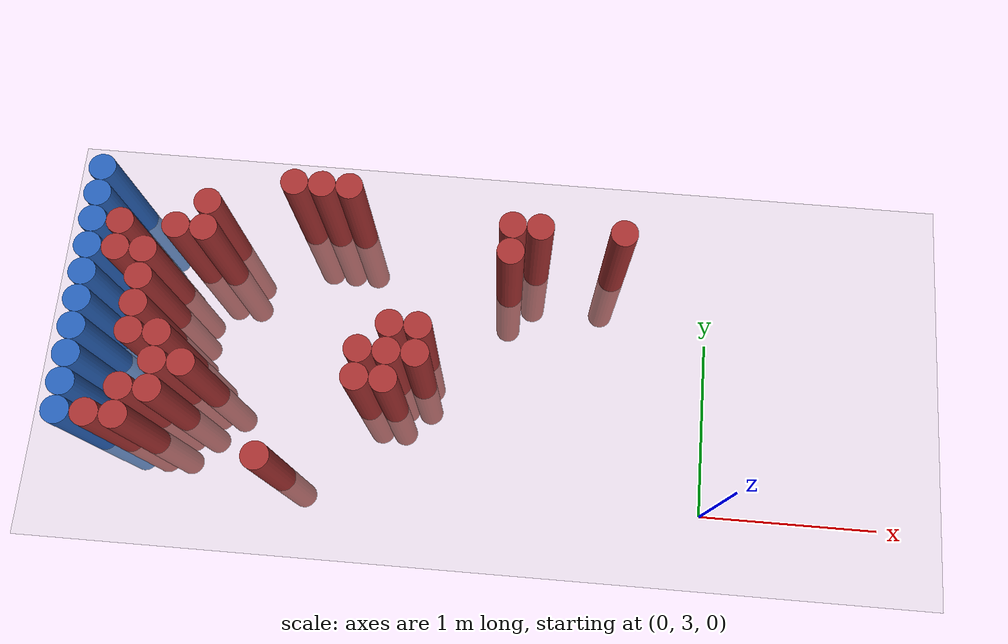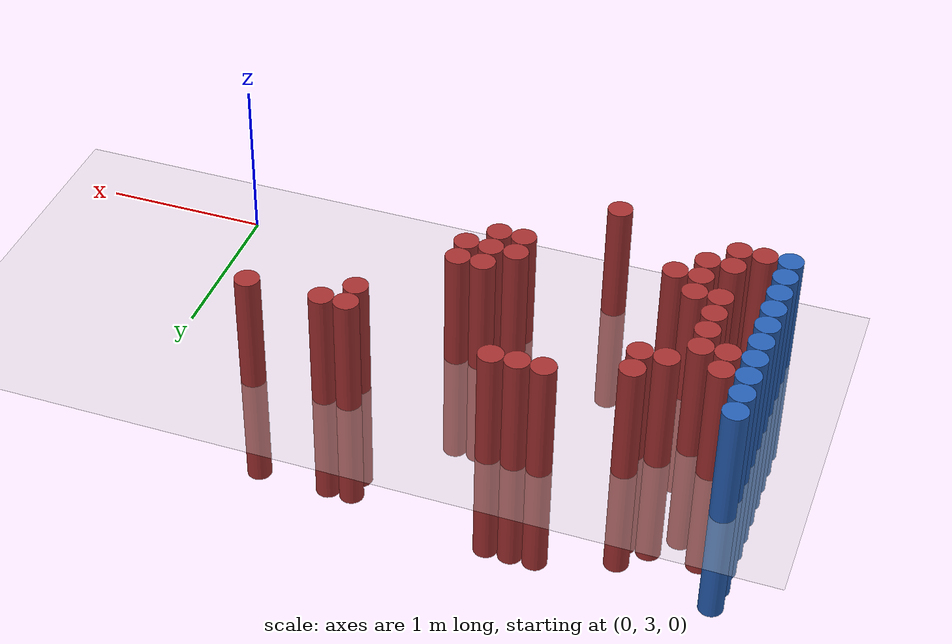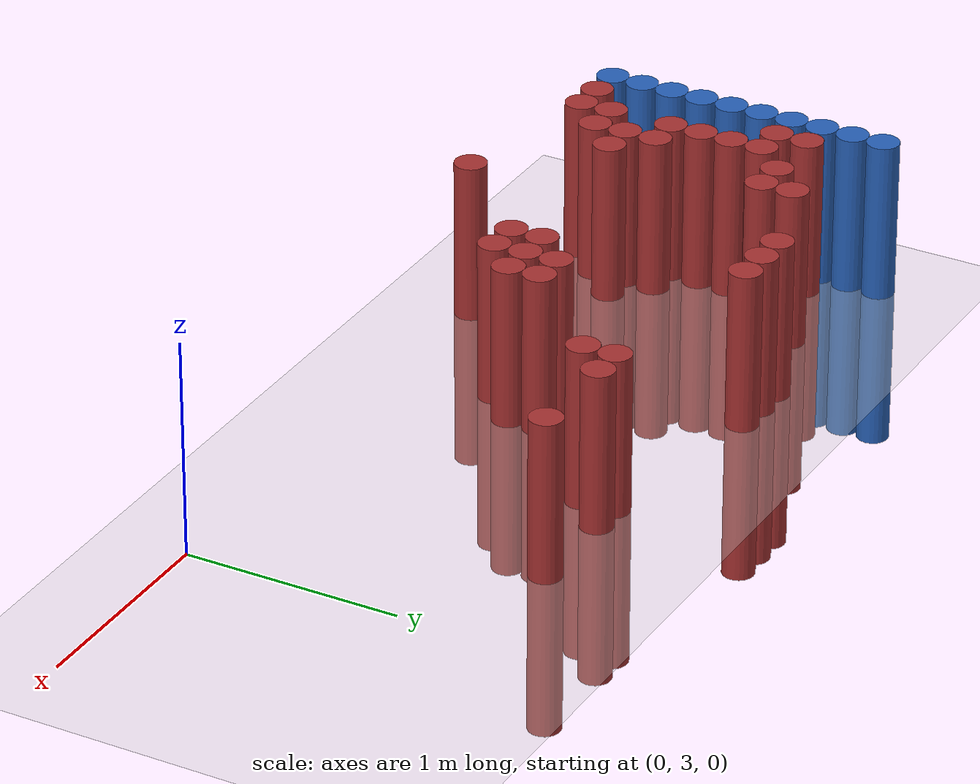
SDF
<sdf version="1.6">
 <world name="default">
  <model name="ground_plane">
   <static>1</static>
   <link name="link">
    <collision name="collision">
     <geometry><plane><normal>0 0 1</normal><size>100 100</size></plane></geometry>
     <surface><friction><ode><mu>100</mu><mu2>50</mu2></ode></friction></surface>
    </collision>
    <visual name="visual">
     <cast_shadows>0</cast_shadows>
     <geometry><plane><normal>0 0 1</normal><size>100 100</size></plane></geometry>
     <material>
      <script><uri>file://media/materials/scripts/gazebo.material</uri><name>Gazebo/Grey</name></script>
     </material>
    </visual>
   </link>
  </model>
  <model name="unit_cylinder_157">
   <static>1</static>
   <pose>-3.425000 3.175000 0.000000 0.000000 0.000000 0.000000</pose>
   <link name="link">
    <inertial>
     <mass>1</mass>
     <inertia><ixx>0.145833</ixx><ixy>0</ixy><ixz>0</ixz><iyy>0.145833</iyy><iyz>0</iyz><izz>0.125</izz></inertia>
    </inertial>
    <collision name="collision">
     <geometry><cylinder><radius>0.075000</radius><length>1.5</length></cylinder></geometry>
    </collision>
    <visual name="visual">
     <geometry><cylinder><radius>0.075000</radius><length>1.5</length></cylinder></geometry>
     <material>
      <ambient>0.152000 0.379000 0.720000 1</ambient>
      <diffuse>0.152000 0.379000 0.720000 1</diffuse>
     </material>
     <material>
      <script><name>Gazebo/Grey</name><uri>file://media/materials/scripts/gazebo.material</uri></script>
     </material>
    </visual>
   </link>
  </model>
  <model name="unit_cylinder_159">
   <static>1</static>
   <pose>-3.425000 3.325000 0.000000 0.000000 0.000000 0.000000</pose>
   <link name="link">
    <inertial>
     <mass>1</mass>
     <inertia><ixx>0.145833</ixx><ixy>0</ixy><ixz>0</ixz><iyy>0.145833</iyy><iyz>0</iyz><izz>0.125</izz></inertia>
    </inertial>
    <collision name="collision">
     <geometry><cylinder><radius>0.075000</radius><length>1.5</length></cylinder></geometry>
    </collision>
    <visual name="visual">
     <geometry><cylinder><radius>0.075000</radius><length>1.5</length></cylinder></geometry>
     <material>
      <ambient>0.152000 0.379000 0.720000 1</ambient>
      <diffuse>0.152000 0.379000 0.720000 1</diffuse>
     </material>
     <material>
      <script><name>Gazebo/Grey</name><uri>file://media/materials/scripts/gazebo.material</uri></script>
     </material>
    </visual>
   </link>
  </model>
  <model name="unit_cylinder_161">
   <static>1</static>
   <pose>-3.425000 3.475000 0.000000 0.000000 0.000000 0.000000</pose>
   <link name="link">
    <inertial>
     <mass>1</mass>
     <inertia><ixx>0.145833</ixx><ixy>0</ixy><ixz>0</ixz><iyy>0.145833</iyy><iyz>0</iyz><izz>0.125</izz></inertia>
    </inertial>
    <collision name="collision">
     <geometry><cylinder><radius>0.075000</radius><length>1.5</length></cylinder></geometry>
    </collision>
    <visual name="visual">
     <geometry><cylinder><radius>0.075000</radius><length>1.5</length></cylinder></geometry>
     <material>
      <ambient>0.152000 0.379000 0.720000 1</ambient>
      <diffuse>0.152000 0.379000 0.720000 1</diffuse>
     </material>
     <material>
      <script><name>Gazebo/Grey</name><uri>file://media/materials/scripts/gazebo.material</uri></script>
     </material>
    </visual>
   </link>
  </model>
  <model name="unit_cylinder_163">
   <static>1</static>
   <pose>-3.425000 3.625000 0.000000 0.000000 0.000000 0.000000</pose>
   <link name="link">
    <inertial>
     <mass>1</mass>
     <inertia><ixx>0.145833</ixx><ixy>0</ixy><ixz>0</ixz><iyy>0.145833</iyy><iyz>0</iyz><izz>0.125</izz></inertia>
    </inertial>
    <collision name="collision">
     <geometry><cylinder><radius>0.075000</radius><length>1.5</length></cylinder></geometry>
    </collision>
    <visual name="visual">
     <geometry><cylinder><radius>0.075000</radius><length>1.5</length></cylinder></geometry>
     <material>
      <ambient>0.152000 0.379000 0.720000 1</ambient>
      <diffuse>0.152000 0.379000 0.720000 1</diffuse>
     </material>
     <material>
      <script><name>Gazebo/Grey</name><uri>file://media/materials/scripts/gazebo.material</uri></script>
     </material>
    </visual>
   </link>
  </model>
  <model name="unit_cylinder_165">
   <static>1</static>
   <pose>-3.425000 3.775000 0.000000 0.000000 0.000000 0.000000</pose>
   <link name="link">
    <inertial>
     <mass>1</mass>
     <inertia><ixx>0.145833</ixx><ixy>0</ixy><ixz>0</ixz><iyy>0.145833</iyy><iyz>0</iyz><izz>0.125</izz></inertia>
    </inertial>
    <collision name="collision">
     <geometry><cylinder><radius>0.075000</radius><length>1.5</length></cylinder></geometry>
    </collision>
    <visual name="visual">
     <geometry><cylinder><radius>0.075000</radius><length>1.5</length></cylinder></geometry>
     <material>
      <ambient>0.152000 0.379000 0.720000 1</ambient>
      <diffuse>0.152000 0.379000 0.720000 1</diffuse>
     </material>
     <material>
      <script><name>Gazebo/Grey</name><uri>file://media/materials/scripts/gazebo.material</uri></script>
     </material>
    </visual>
   </link>
  </model>
  <model name="unit_cylinder_167">
   <static>1</static>
   <pose>-3.425000 3.925000 0.000000 0.000000 0.000000 0.000000</pose>
   <link name="link">
    <inertial>
     <mass>1</mass>
     <inertia><ixx>0.145833</ixx><ixy>0</ixy><ixz>0</ixz><iyy>0.145833</iyy><iyz>0</iyz><izz>0.125</izz></inertia>
    </inertial>
    <collision name="collision">
     <geometry><cylinder><radius>0.075000</radius><length>1.5</length></cylinder></geometry>
    </collision>
    <visual name="visual">
     <geometry><cylinder><radius>0.075000</radius><length>1.5</length></cylinder></geometry>
     <material>
      <ambient>0.152000 0.379000 0.720000 1</ambient>
      <diffuse>0.152000 0.379000 0.720000 1</diffuse>
     </material>
     <material>
      <script><name>Gazebo/Grey</name><uri>file://media/materials/scripts/gazebo.material</uri></script>
     </material>
    </visual>
   </link>
  </model>
  <model name="unit_cylinder_169">
   <static>1</static>
   <pose>-3.425000 4.075000 0.000000 0.000000 0.000000 0.000000</pose>
   <link name="link">
    <inertial>
     <mass>1</mass>
     <inertia><ixx>0.145833</ixx><ixy>0</ixy><ixz>0</ixz><iyy>0.145833</iyy><iyz>0</iyz><izz>0.125</izz></inertia>
    </inertial>
    <collision name="collision">
     <geometry><cylinder><radius>0.075000</radius><length>1.5</length></cylinder></geometry>
    </collision>
    <visual name="visual">
     <geometry><cylinder><radius>0.075000</radius><length>1.5</length></cylinder></geometry>
     <material>
      <ambient>0.152000 0.379000 0.720000 1</ambient>
      <diffuse>0.152000 0.379000 0.720000 1</diffuse>
     </material>
     <material>
      <script><name>Gazebo/Grey</name><uri>file://media/materials/scripts/gazebo.material</uri></script>
     </material>
    </visual>
   </link>
  </model>
  <model name="unit_cylinder_171">
   <static>1</static>
   <pose>-3.425000 4.225000 0.000000 0.000000 0.000000 0.000000</pose>
   <link name="link">
    <inertial>
     <mass>1</mass>
     <inertia><ixx>0.145833</ixx><ixy>0</ixy><ixz>0</ixz><iyy>0.145833</iyy><iyz>0</iyz><izz>0.125</izz></inertia>
    </inertial>
    <collision name="collision">
     <geometry><cylinder><radius>0.075000</radius><length>1.5</length></cylinder></geometry>
    </collision>
    <visual name="visual">
     <geometry><cylinder><radius>0.075000</radius><length>1.5</length></cylinder></geometry>
     <material>
      <ambient>0.152000 0.379000 0.720000 1</ambient>
      <diffuse>0.152000 0.379000 0.720000 1</diffuse>
     </material>
     <material>
      <script><name>Gazebo/Grey</name><uri>file://media/materials/scripts/gazebo.material</uri></script>
     </material>
    </visual>
   </link>
  </model>
  <model name="unit_cylinder_173">
   <static>1</static>
   <pose>-3.425000 4.375000 0.000000 0.000000 0.000000 0.000000</pose>
   <link name="link">
    <inertial>
     <mass>1</mass>
     <inertia><ixx>0.145833</ixx><ixy>0</ixy><ixz>0</ixz><iyy>0.145833</iyy><iyz>0</iyz><izz>0.125</izz></inertia>
    </inertial>
    <collision name="collision">
     <geometry><cylinder><radius>0.075000</radius><length>1.5</length></cylinder></geometry>
    </collision>
    <visual name="visual">
     <geometry><cylinder><radius>0.075000</radius><length>1.5</length></cylinder></geometry>
     <material>
      <ambient>0.152000 0.379000 0.720000 1</ambient>
      <diffuse>0.152000 0.379000 0.720000 1</diffuse>
     </material>
     <material>
      <script><name>Gazebo/Grey</name><uri>file://media/materials/scripts/gazebo.material</uri></script>
     </material>
    </visual>
   </link>
  </model>
  <model name="unit_cylinder_175">
   <static>1</static>
   <pose>-3.425000 4.525000 0.000000 0.000000 0.000000 0.000000</pose>
   <link name="link">
    <inertial>
     <mass>1</mass>
     <inertia><ixx>0.145833</ixx><ixy>0</ixy><ixz>0</ixz><iyy>0.145833</iyy><iyz>0</iyz><izz>0.125</izz></inertia>
    </inertial>
    <collision name="collision">
     <geometry><cylinder><radius>0.075000</radius><length>1.5</length></cylinder></geometry>
    </collision>
    <visual name="visual">
     <geometry><cylinder><radius>0.075000</radius><length>1.5</length></cylinder></geometry>
     <material>
      <ambient>0.152000 0.379000 0.720000 1</ambient>
      <diffuse>0.152000 0.379000 0.720000 1</diffuse>
     </material>
     <material>
      <script><name>Gazebo/Grey</name><uri>file://media/materials/scripts/gazebo.material</uri></script>
     </material>
    </visual>
   </link>
  </model>
  <model name="unit_cylinder_242">
   <static>1</static>
   <pose>-3.425000 3.175000 0.000000 0.000000 0.000000 0.000000</pose>
   <link name="link">
    <inertial>
     <mass>1</mass>
     <inertia><ixx>0.145833</ixx><ixy>0</ixy><ixz>0</ixz><iyy>0.145833</iyy><iyz>0</iyz><izz>0.125</izz></inertia>
    </inertial>
    <collision name="collision">
     <geometry><cylinder><radius>0.075000</radius><length>1.5</length></cylinder></geometry>
    </collision>
    <visual name="visual">
     <geometry><cylinder><radius>0.075000</radius><length>1.5</length></cylinder></geometry>
     <material>
      <ambient>0.152000 0.379000 0.720000 1</ambient>
      <diffuse>0.152000 0.379000 0.720000 1</diffuse>
     </material>
     <material>
      <script><name>Gazebo/Grey</name><uri>file://media/materials/scripts/gazebo.material</uri></script>
     </material>
    </visual>
   </link>
  </model>
  <model name="unit_cylinder_243">
   <static>1</static>
   <pose>-3.425000 3.325000 0.000000 0.000000 0.000000 0.000000</pose>
   <link name="link">
    <inertial>
     <mass>1</mass>
     <inertia><ixx>0.145833</ixx><ixy>0</ixy><ixz>0</ixz><iyy>0.145833</iyy><iyz>0</iyz><izz>0.125</izz></inertia>
    </inertial>
    <collision name="collision">
     <geometry><cylinder><radius>0.075000</radius><length>1.5</length></cylinder></geometry>
    </collision>
    <visual name="visual">
     <geometry><cylinder><radius>0.075000</radius><length>1.5</length></cylinder></geometry>
     <material>
      <ambient>0.152000 0.379000 0.720000 1</ambient>
      <diffuse>0.152000 0.379000 0.720000 1</diffuse>
     </material>
     <material>
      <script><name>Gazebo/Grey</name><uri>file://media/materials/scripts/gazebo.material</uri></script>
     </material>
    </visual>
   </link>
  </model>
  <model name="unit_cylinder_244">
   <static>1</static>
   <pose>-3.425000 3.475000 0.000000 0.000000 0.000000 0.000000</pose>
   <link name="link">
    <inertial>
     <mass>1</mass>
     <inertia><ixx>0.145833</ixx><ixy>0</ixy><ixz>0</ixz><iyy>0.145833</iyy><iyz>0</iyz><izz>0.125</izz></inertia>
    </inertial>
    <collision name="collision">
     <geometry><cylinder><radius>0.075000</radius><length>1.5</length></cylinder></geometry>
    </collision>
    <visual name="visual">
     <geometry><cylinder><radius>0.075000</radius><length>1.5</length></cylinder></geometry>
     <material>
      <ambient>0.152000 0.379000 0.720000 1</ambient>
      <diffuse>0.152000 0.379000 0.720000 1</diffuse>
     </material>
     <material>
      <script><name>Gazebo/Grey</name><uri>file://media/materials/scripts/gazebo.material</uri></script>
     </material>
    </visual>
   </link>
  </model>
  <model name="unit_cylinder_245">
   <static>1</static>
   <pose>-3.425000 3.625000 0.000000 0.000000 0.000000 0.000000</pose>
   <link name="link">
    <inertial>
     <mass>1</mass>
     <inertia><ixx>0.145833</ixx><ixy>0</ixy><ixz>0</ixz><iyy>0.145833</iyy><iyz>0</iyz><izz>0.125</izz></inertia>
    </inertial>
    <collision name="collision">
     <geometry><cylinder><radius>0.075000</radius><length>1.5</length></cylinder></geometry>
    </collision>
    <visual name="visual">
     <geometry><cylinder><radius>0.075000</radius><length>1.5</length></cylinder></geometry>
     <material>
      <ambient>0.152000 0.379000 0.720000 1</ambient>
      <diffuse>0.152000 0.379000 0.720000 1</diffuse>
     </material>
     <material>
      <script><name>Gazebo/Grey</name><uri>file://media/materials/scripts/gazebo.material</uri></script>
     </material>
    </visual>
   </link>
  </model>
  <model name="unit_cylinder_246">
   <static>1</static>
   <pose>-3.425000 3.775000 0.000000 0.000000 0.000000 0.000000</pose>
   <link name="link">
    <inertial>
     <mass>1</mass>
     <inertia><ixx>0.145833</ixx><ixy>0</ixy><ixz>0</ixz><iyy>0.145833</iyy><iyz>0</iyz><izz>0.125</izz></inertia>
    </inertial>
    <collision name="collision">
     <geometry><cylinder><radius>0.075000</radius><length>1.5</length></cylinder></geometry>
    </collision>
    <visual name="visual">
     <geometry><cylinder><radius>0.075000</radius><length>1.5</length></cylinder></geometry>
     <material>
      <ambient>0.152000 0.379000 0.720000 1</ambient>
      <diffuse>0.152000 0.379000 0.720000 1</diffuse>
     </material>
     <material>
      <script><name>Gazebo/Grey</name><uri>file://media/materials/scripts/gazebo.material</uri></script>
     </material>
    </visual>
   </link>
  </model>
  <model name="unit_cylinder_247">
   <static>1</static>
   <pose>-3.425000 3.925000 0.000000 0.000000 0.000000 0.000000</pose>
   <link name="link">
    <inertial>
     <mass>1</mass>
     <inertia><ixx>0.145833</ixx><ixy>0</ixy><ixz>0</ixz><iyy>0.145833</iyy><iyz>0</iyz><izz>0.125</izz></inertia>
    </inertial>
    <collision name="collision">
     <geometry><cylinder><radius>0.075000</radius><length>1.5</length></cylinder></geometry>
    </collision>
    <visual name="visual">
     <geometry><cylinder><radius>0.075000</radius><length>1.5</length></cylinder></geometry>
     <material>
      <ambient>0.152000 0.379000 0.720000 1</ambient>
      <diffuse>0.152000 0.379000 0.720000 1</diffuse>
     </material>
     <material>
      <script><name>Gazebo/Grey</name><uri>file://media/materials/scripts/gazebo.material</uri></script>
     </material>
    </visual>
   </link>
  </model>
  <model name="unit_cylinder_248">
   <static>1</static>
   <pose>-3.425000 4.075000 0.000000 0.000000 0.000000 0.000000</pose>
   <link name="link">
    <inertial>
     <mass>1</mass>
     <inertia><ixx>0.145833</ixx><ixy>0</ixy><ixz>0</ixz><iyy>0.145833</iyy><iyz>0</iyz><izz>0.125</izz></inertia>
    </inertial>
    <collision name="collision">
     <geometry><cylinder><radius>0.075000</radius><length>1.5</length></cylinder></geometry>
    </collision>
    <visual name="visual">
     <geometry><cylinder><radius>0.075000</radius><length>1.5</length></cylinder></geometry>
     <material>
      <ambient>0.152000 0.379000 0.720000 1</ambient>
      <diffuse>0.152000 0.379000 0.720000 1</diffuse>
     </material>
     <material>
      <script><name>Gazebo/Grey</name><uri>file://media/materials/scripts/gazebo.material</uri></script>
     </material>
    </visual>
   </link>
  </model>
  <model name="unit_cylinder_249">
   <static>1</static>
   <pose>-3.425000 4.225000 0.000000 0.000000 0.000000 0.000000</pose>
   <link name="link">
    <inertial>
     <mass>1</mass>
     <inertia><ixx>0.145833</ixx><ixy>0</ixy><ixz>0</ixz><iyy>0.145833</iyy><iyz>0</iyz><izz>0.125</izz></inertia>
    </inertial>
    <collision name="collision">
     <geometry><cylinder><radius>0.075000</radius><length>1.5</length></cylinder></geometry>
    </collision>
    <visual name="visual">
     <geometry><cylinder><radius>0.075000</radius><length>1.5</length></cylinder></geometry>
     <material>
      <ambient>0.152000 0.379000 0.720000 1</ambient>
      <diffuse>0.152000 0.379000 0.720000 1</diffuse>
     </material>
     <material>
      <script><name>Gazebo/Grey</name><uri>file://media/materials/scripts/gazebo.material</uri></script>
     </material>
    </visual>
   </link>
  </model>
  <model name="unit_cylinder_250">
   <static>1</static>
   <pose>-3.425000 4.375000 0.000000 0.000000 0.000000 0.000000</pose>
   <link name="link">
    <inertial>
     <mass>1</mass>
     <inertia><ixx>0.145833</ixx><ixy>0</ixy><ixz>0</ixz><iyy>0.145833</iyy><iyz>0</iyz><izz>0.125</izz></inertia>
    </inertial>
    <collision name="collision">
     <geometry><cylinder><radius>0.075000</radius><length>1.5</length></cylinder></geometry>
    </collision>
    <visual name="visual">
     <geometry><cylinder><radius>0.075000</radius><length>1.5</length></cylinder></geometry>
     <material>
      <ambient>0.152000 0.379000 0.720000 1</ambient>
      <diffuse>0.152000 0.379000 0.720000 1</diffuse>
     </material>
     <material>
      <script><name>Gazebo/Grey</name><uri>file://media/materials/scripts/gazebo.material</uri></script>
     </material>
    </visual>
   </link>
  </model>
  <model name="unit_cylinder_251">
   <static>1</static>
   <pose>-3.425000 4.525000 0.000000 0.000000 0.000000 0.000000</pose>
   <link name="link">
    <inertial>
     <mass>1</mass>
     <inertia><ixx>0.145833</ixx><ixy>0</ixy><ixz>0</ixz><iyy>0.145833</iyy><iyz>0</iyz><izz>0.125</izz></inertia>
    </inertial>
    <collision name="collision">
     <geometry><cylinder><radius>0.075000</radius><length>1.5</length></cylinder></geometry>
    </collision>
    <visual name="visual">
     <geometry><cylinder><radius>0.075000</radius><length>1.5</length></cylinder></geometry>
     <material>
      <ambient>0.152000 0.379000 0.720000 1</ambient>
      <diffuse>0.152000 0.379000 0.720000 1</diffuse>
     </material>
     <material>
      <script><name>Gazebo/Grey</name><uri>file://media/materials/scripts/gazebo.material</uri></script>
     </material>
    </visual>
   </link>
  </model>
  <model name="unit_cylinder_279">
   <static>1</static>
   <pose>-3.275000 3.175000 0.000000 0.000000 0.000000 0.000000</pose>
   <link name="link">
    <inertial>
     <mass>1</mass>
     <inertia><ixx>0.145833</ixx><ixy>0</ixy><ixz>0</ixz><iyy>0.145833</iyy><iyz>0</iyz><izz>0.125</izz></inertia>
    </inertial>
    <collision name="collision">
     <geometry><cylinder><radius>0.075000</radius><length>1.5</length></cylinder></geometry>
    </collision>
    <visual name="visual">
     <geometry><cylinder><radius>0.075000</radius><length>1.5</length></cylinder></geometry>
     <material>
      <ambient>0.648000 0.192000 0.192000 1</ambient>
      <diffuse>0.648000 0.192000 0.192000 1</diffuse>
     </material>
     <material>
      <script><name>Gazebo/Grey</name><uri>file://media/materials/scripts/gazebo.material</uri></script>
     </material>
    </visual>
   </link>
  </model>
  <model name="unit_cylinder_280">
   <static>1</static>
   <pose>-3.275000 4.075000 0.000000 0.000000 0.000000 0.000000</pose>
   <link name="link">
    <inertial>
     <mass>1</mass>
     <inertia><ixx>0.145833</ixx><ixy>0</ixy><ixz>0</ixz><iyy>0.145833</iyy><iyz>0</iyz><izz>0.125</izz></inertia>
    </inertial>
    <collision name="collision">
     <geometry><cylinder><radius>0.075000</radius><length>1.5</length></cylinder></geometry>
    </collision>
    <visual name="visual">
     <geometry><cylinder><radius>0.075000</radius><length>1.5</length></cylinder></geometry>
     <material>
      <ambient>0.648000 0.192000 0.192000 1</ambient>
      <diffuse>0.648000 0.192000 0.192000 1</diffuse>
     </material>
     <material>
      <script><name>Gazebo/Grey</name><uri>file://media/materials/scripts/gazebo.material</uri></script>
     </material>
    </visual>
   </link>
  </model>
  <model name="unit_cylinder_281">
   <static>1</static>
   <pose>-3.275000 4.225000 0.000000 0.000000 0.000000 0.000000</pose>
   <link name="link">
    <inertial>
     <mass>1</mass>
     <inertia><ixx>0.145833</ixx><ixy>0</ixy><ixz>0</ixz><iyy>0.145833</iyy><iyz>0</iyz><izz>0.125</izz></inertia>
    </inertial>
    <collision name="collision">
     <geometry><cylinder><radius>0.075000</radius><length>1.5</length></cylinder></geometry>
    </collision>
    <visual name="visual">
     <geometry><cylinder><radius>0.075000</radius><length>1.5</length></cylinder></geometry>
     <material>
      <ambient>0.648000 0.192000 0.192000 1</ambient>
      <diffuse>0.648000 0.192000 0.192000 1</diffuse>
     </material>
     <material>
      <script><name>Gazebo/Grey</name><uri>file://media/materials/scripts/gazebo.material</uri></script>
     </material>
    </visual>
   </link>
  </model>
  <model name="unit_cylinder_294">
   <static>1</static>
   <pose>-3.125000 3.175000 0.000000 0.000000 0.000000 0.000000</pose>
   <link name="link">
    <inertial>
     <mass>1</mass>
     <inertia><ixx>0.145833</ixx><ixy>0</ixy><ixz>0</ixz><iyy>0.145833</iyy><iyz>0</iyz><izz>0.125</izz></inertia>
    </inertial>
    <collision name="collision">
     <geometry><cylinder><radius>0.075000</radius><length>1.5</length></cylinder></geometry>
    </collision>
    <visual name="visual">
     <geometry><cylinder><radius>0.075000</radius><length>1.5</length></cylinder></geometry>
     <material>
      <ambient>0.648000 0.192000 0.192000 1</ambient>
      <diffuse>0.648000 0.192000 0.192000 1</diffuse>
     </material>
     <material>
      <script><name>Gazebo/Grey</name><uri>file://media/materials/scripts/gazebo.material</uri></script>
     </material>
    </visual>
   </link>
  </model>
  <model name="unit_cylinder_295">
   <static>1</static>
   <pose>-3.125000 3.325000 0.000000 0.000000 0.000000 0.000000</pose>
   <link name="link">
    <inertial>
     <mass>1</mass>
     <inertia><ixx>0.145833</ixx><ixy>0</ixy><ixz>0</ixz><iyy>0.145833</iyy><iyz>0</iyz><izz>0.125</izz></inertia>
    </inertial>
    <collision name="collision">
     <geometry><cylinder><radius>0.075000</radius><length>1.5</length></cylinder></geometry>
    </collision>
    <visual name="visual">
     <geometry><cylinder><radius>0.075000</radius><length>1.5</length></cylinder></geometry>
     <material>
      <ambient>0.648000 0.192000 0.192000 1</ambient>
      <diffuse>0.648000 0.192000 0.192000 1</diffuse>
     </material>
     <material>
      <script><name>Gazebo/Grey</name><uri>file://media/materials/scripts/gazebo.material</uri></script>
     </material>
    </visual>
   </link>
  </model>
  <model name="unit_cylinder_296">
   <static>1</static>
   <pose>-3.125000 3.625000 0.000000 0.000000 0.000000 0.000000</pose>
   <link name="link">
    <inertial>
     <mass>1</mass>
     <inertia><ixx>0.145833</ixx><ixy>0</ixy><ixz>0</ixz><iyy>0.145833</iyy><iyz>0</iyz><izz>0.125</izz></inertia>
    </inertial>
    <collision name="collision">
     <geometry><cylinder><radius>0.075000</radius><length>1.5</length></cylinder></geometry>
    </collision>
    <visual name="visual">
     <geometry><cylinder><radius>0.075000</radius><length>1.5</length></cylinder></geometry>
     <material>
      <ambient>0.648000 0.192000 0.192000 1</ambient>
      <diffuse>0.648000 0.192000 0.192000 1</diffuse>
     </material>
     <material>
      <script><name>Gazebo/Grey</name><uri>file://media/materials/scripts/gazebo.material</uri></script>
     </material>
    </visual>
   </link>
  </model>
  <model name="unit_cylinder_297">
   <static>1</static>
   <pose>-3.125000 3.775000 0.000000 0.000000 0.000000 0.000000</pose>
   <link name="link">
    <inertial>
     <mass>1</mass>
     <inertia><ixx>0.145833</ixx><ixy>0</ixy><ixz>0</ixz><iyy>0.145833</iyy><iyz>0</iyz><izz>0.125</izz></inertia>
    </inertial>
    <collision name="collision">
     <geometry><cylinder><radius>0.075000</radius><length>1.5</length></cylinder></geometry>
    </collision>
    <visual name="visual">
     <geometry><cylinder><radius>0.075000</radius><length>1.5</length></cylinder></geometry>
     <material>
      <ambient>0.648000 0.192000 0.192000 1</ambient>
      <diffuse>0.648000 0.192000 0.192000 1</diffuse>
     </material>
     <material>
      <script><name>Gazebo/Grey</name><uri>file://media/materials/scripts/gazebo.material</uri></script>
     </material>
    </visual>
   </link>
  </model>
  <model name="unit_cylinder_298">
   <static>1</static>
   <pose>-3.125000 3.925000 0.000000 0.000000 0.000000 0.000000</pose>
   <link name="link">
    <inertial>
     <mass>1</mass>
     <inertia><ixx>0.145833</ixx><ixy>0</ixy><ixz>0</ixz><iyy>0.145833</iyy><iyz>0</iyz><izz>0.125</izz></inertia>
    </inertial>
    <collision name="collision">
     <geometry><cylinder><radius>0.075000</radius><length>1.5</length></cylinder></geometry>
    </collision>
    <visual name="visual">
     <geometry><cylinder><radius>0.075000</radius><length>1.5</length></cylinder></geometry>
     <material>
      <ambient>0.648000 0.192000 0.192000 1</ambient>
      <diffuse>0.648000 0.192000 0.192000 1</diffuse>
     </material>
     <material>
      <script><name>Gazebo/Grey</name><uri>file://media/materials/scripts/gazebo.material</uri></script>
     </material>
    </visual>
   </link>
  </model>
  <model name="unit_cylinder_299">
   <static>1</static>
   <pose>-3.125000 4.075000 0.000000 0.000000 0.000000 0.000000</pose>
   <link name="link">
    <inertial>
     <mass>1</mass>
     <inertia><ixx>0.145833</ixx><ixy>0</ixy><ixz>0</ixz><iyy>0.145833</iyy><iyz>0</iyz><izz>0.125</izz></inertia>
    </inertial>
    <collision name="collision">
     <geometry><cylinder><radius>0.075000</radius><length>1.5</length></cylinder></geometry>
    </collision>
    <visual name="visual">
     <geometry><cylinder><radius>0.075000</radius><length>1.5</length></cylinder></geometry>
     <material>
      <ambient>0.648000 0.192000 0.192000 1</ambient>
      <diffuse>0.648000 0.192000 0.192000 1</diffuse>
     </material>
     <material>
      <script><name>Gazebo/Grey</name><uri>file://media/materials/scripts/gazebo.material</uri></script>
     </material>
    </visual>
   </link>
  </model>
  <model name="unit_cylinder_304">
   <static>1</static>
   <pose>-2.975000 3.325000 0.000000 0.000000 0.000000 0.000000</pose>
   <link name="link">
    <inertial>
     <mass>1</mass>
     <inertia><ixx>0.145833</ixx><ixy>0</ixy><ixz>0</ixz><iyy>0.145833</iyy><iyz>0</iyz><izz>0.125</izz></inertia>
    </inertial>
    <collision name="collision">
     <geometry><cylinder><radius>0.075000</radius><length>1.5</length></cylinder></geometry>
    </collision>
    <visual name="visual">
     <geometry><cylinder><radius>0.075000</radius><length>1.5</length></cylinder></geometry>
     <material>
      <ambient>0.648000 0.192000 0.192000 1</ambient>
      <diffuse>0.648000 0.192000 0.192000 1</diffuse>
     </material>
     <material>
      <script><name>Gazebo/Grey</name><uri>file://media/materials/scripts/gazebo.material</uri></script>
     </material>
    </visual>
   </link>
  </model>
  <model name="unit_cylinder_305">
   <static>1</static>
   <pose>-2.975000 3.475000 0.000000 0.000000 0.000000 0.000000</pose>
   <link name="link">
    <inertial>
     <mass>1</mass>
     <inertia><ixx>0.145833</ixx><ixy>0</ixy><ixz>0</ixz><iyy>0.145833</iyy><iyz>0</iyz><izz>0.125</izz></inertia>
    </inertial>
    <collision name="collision">
     <geometry><cylinder><radius>0.075000</radius><length>1.5</length></cylinder></geometry>
    </collision>
    <visual name="visual">
     <geometry><cylinder><radius>0.075000</radius><length>1.5</length></cylinder></geometry>
     <material>
      <ambient>0.648000 0.192000 0.192000 1</ambient>
      <diffuse>0.648000 0.192000 0.192000 1</diffuse>
     </material>
     <material>
      <script><name>Gazebo/Grey</name><uri>file://media/materials/scripts/gazebo.material</uri></script>
     </material>
    </visual>
   </link>
  </model>
  <model name="unit_cylinder_306">
   <static>1</static>
   <pose>-2.975000 3.625000 0.000000 0.000000 0.000000 0.000000</pose>
   <link name="link">
    <inertial>
     <mass>1</mass>
     <inertia><ixx>0.145833</ixx><ixy>0</ixy><ixz>0</ixz><iyy>0.145833</iyy><iyz>0</iyz><izz>0.125</izz></inertia>
    </inertial>
    <collision name="collision">
     <geometry><cylinder><radius>0.075000</radius><length>1.5</length></cylinder></geometry>
    </collision>
    <visual name="visual">
     <geometry><cylinder><radius>0.075000</radius><length>1.5</length></cylinder></geometry>
     <material>
      <ambient>0.648000 0.192000 0.192000 1</ambient>
      <diffuse>0.648000 0.192000 0.192000 1</diffuse>
     </material>
     <material>
      <script><name>Gazebo/Grey</name><uri>file://media/materials/scripts/gazebo.material</uri></script>
     </material>
    </visual>
   </link>
  </model>
  <model name="unit_cylinder_307">
   <static>1</static>
   <pose>-2.975000 4.225000 0.000000 0.000000 0.000000 0.000000</pose>
   <link name="link">
    <inertial>
     <mass>1</mass>
     <inertia><ixx>0.145833</ixx><ixy>0</ixy><ixz>0</ixz><iyy>0.145833</iyy><iyz>0</iyz><izz>0.125</izz></inertia>
    </inertial>
    <collision name="collision">
     <geometry><cylinder><radius>0.075000</radius><length>1.5</length></cylinder></geometry>
    </collision>
    <visual name="visual">
     <geometry><cylinder><radius>0.075000</radius><length>1.5</length></cylinder></geometry>
     <material>
      <ambient>0.648000 0.192000 0.192000 1</ambient>
      <diffuse>0.648000 0.192000 0.192000 1</diffuse>
     </material>
     <material>
      <script><name>Gazebo/Grey</name><uri>file://media/materials/scripts/gazebo.material</uri></script>
     </material>
    </visual>
   </link>
  </model>
  <model name="unit_cylinder_309">
   <static>1</static>
   <pose>-2.825000 3.475000 0.000000 0.000000 0.000000 0.000000</pose>
   <link name="link">
    <inertial>
     <mass>1</mass>
     <inertia><ixx>0.145833</ixx><ixy>0</ixy><ixz>0</ixz><iyy>0.145833</iyy><iyz>0</iyz><izz>0.125</izz></inertia>
    </inertial>
    <collision name="collision">
     <geometry><cylinder><radius>0.075000</radius><length>1.5</length></cylinder></geometry>
    </collision>
    <visual name="visual">
     <geometry><cylinder><radius>0.075000</radius><length>1.5</length></cylinder></geometry>
     <material>
      <ambient>0.648000 0.192000 0.192000 1</ambient>
      <diffuse>0.648000 0.192000 0.192000 1</diffuse>
     </material>
     <material>
      <script><name>Gazebo/Grey</name><uri>file://media/materials/scripts/gazebo.material</uri></script>
     </material>
    </visual>
   </link>
  </model>
  <model name="unit_cylinder_310">
   <static>1</static>
   <pose>-2.825000 4.225000 0.000000 0.000000 0.000000 0.000000</pose>
   <link name="link">
    <inertial>
     <mass>1</mass>
     <inertia><ixx>0.145833</ixx><ixy>0</ixy><ixz>0</ixz><iyy>0.145833</iyy><iyz>0</iyz><izz>0.125</izz></inertia>
    </inertial>
    <collision name="collision">
     <geometry><cylinder><radius>0.075000</radius><length>1.5</length></cylinder></geometry>
    </collision>
    <visual name="visual">
     <geometry><cylinder><radius>0.075000</radius><length>1.5</length></cylinder></geometry>
     <material>
      <ambient>0.648000 0.192000 0.192000 1</ambient>
      <diffuse>0.648000 0.192000 0.192000 1</diffuse>
     </material>
     <material>
      <script><name>Gazebo/Grey</name><uri>file://media/materials/scripts/gazebo.material</uri></script>
     </material>
    </visual>
   </link>
  </model>
  <model name="unit_cylinder_311">
   <static>1</static>
   <pose>-2.825000 4.375000 0.000000 0.000000 0.000000 0.000000</pose>
   <link name="link">
    <inertial>
     <mass>1</mass>
     <inertia><ixx>0.145833</ixx><ixy>0</ixy><ixz>0</ixz><iyy>0.145833</iyy><iyz>0</iyz><izz>0.125</izz></inertia>
    </inertial>
    <collision name="collision">
     <geometry><cylinder><radius>0.075000</radius><length>1.5</length></cylinder></geometry>
    </collision>
    <visual name="visual">
     <geometry><cylinder><radius>0.075000</radius><length>1.5</length></cylinder></geometry>
     <material>
      <ambient>0.648000 0.192000 0.192000 1</ambient>
      <diffuse>0.648000 0.192000 0.192000 1</diffuse>
     </material>
     <material>
      <script><name>Gazebo/Grey</name><uri>file://media/materials/scripts/gazebo.material</uri></script>
     </material>
    </visual>
   </link>
  </model>
  <model name="unit_cylinder_320">
   <static>1</static>
   <pose>-2.375000 3.025000 0.000000 0.000000 0.000000 0.000000</pose>
   <link name="link">
    <inertial>
     <mass>1</mass>
     <inertia><ixx>0.145833</ixx><ixy>0</ixy><ixz>0</ixz><iyy>0.145833</iyy><iyz>0</iyz><izz>0.125</izz></inertia>
    </inertial>
    <collision name="collision">
     <geometry><cylinder><radius>0.075000</radius><length>1.5</length></cylinder></geometry>
    </collision>
    <visual name="visual">
     <geometry><cylinder><radius>0.075000</radius><length>1.5</length></cylinder></geometry>
     <material>
      <ambient>0.648000 0.192000 0.192000 1</ambient>
      <diffuse>0.648000 0.192000 0.192000 1</diffuse>
     </material>
     <material>
      <script><name>Gazebo/Grey</name><uri>file://media/materials/scripts/gazebo.material</uri></script>
     </material>
    </visual>
   </link>
  </model>
  <model name="unit_cylinder_321">
   <static>1</static>
   <pose>-2.375000 4.525000 0.000000 0.000000 0.000000 0.000000</pose>
   <link name="link">
    <inertial>
     <mass>1</mass>
     <inertia><ixx>0.145833</ixx><ixy>0</ixy><ixz>0</ixz><iyy>0.145833</iyy><iyz>0</iyz><izz>0.125</izz></inertia>
    </inertial>
    <collision name="collision">
     <geometry><cylinder><radius>0.075000</radius><length>1.5</length></cylinder></geometry>
    </collision>
    <visual name="visual">
     <geometry><cylinder><radius>0.075000</radius><length>1.5</length></cylinder></geometry>
     <material>
      <ambient>0.648000 0.192000 0.192000 1</ambient>
      <diffuse>0.648000 0.192000 0.192000 1</diffuse>
     </material>
     <material>
      <script><name>Gazebo/Grey</name><uri>file://media/materials/scripts/gazebo.material</uri></script>
     </material>
    </visual>
   </link>
  </model>
  <model name="unit_cylinder_335">
   <static>1</static>
   <pose>-2.225000 4.525000 0.000000 0.000000 0.000000 0.000000</pose>
   <link name="link">
    <inertial>
     <mass>1</mass>
     <inertia><ixx>0.145833</ixx><ixy>0</ixy><ixz>0</ixz><iyy>0.145833</iyy><iyz>0</iyz><izz>0.125</izz></inertia>
    </inertial>
    <collision name="collision">
     <geometry><cylinder><radius>0.075000</radius><length>1.5</length></cylinder></geometry>
    </collision>
    <visual name="visual">
     <geometry><cylinder><radius>0.075000</radius><length>1.5</length></cylinder></geometry>
     <material>
      <ambient>0.648000 0.192000 0.192000 1</ambient>
      <diffuse>0.648000 0.192000 0.192000 1</diffuse>
     </material>
     <material>
      <script><name>Gazebo/Grey</name><uri>file://media/materials/scripts/gazebo.material</uri></script>
     </material>
    </visual>
   </link>
  </model>
  <model name="unit_cylinder_342">
   <static>1</static>
   <pose>-2.075000 4.525000 0.000000 0.000000 0.000000 0.000000</pose>
   <link name="link">
    <inertial>
     <mass>1</mass>
     <inertia><ixx>0.145833</ixx><ixy>0</ixy><ixz>0</ixz><iyy>0.145833</iyy><iyz>0</iyz><izz>0.125</izz></inertia>
    </inertial>
    <collision name="collision">
     <geometry><cylinder><radius>0.075000</radius><length>1.5</length></cylinder></geometry>
    </collision>
    <visual name="visual">
     <geometry><cylinder><radius>0.075000</radius><length>1.5</length></cylinder></geometry>
     <material>
      <ambient>0.648000 0.192000 0.192000 1</ambient>
      <diffuse>0.648000 0.192000 0.192000 1</diffuse>
     </material>
     <material>
      <script><name>Gazebo/Grey</name><uri>file://media/materials/scripts/gazebo.material</uri></script>
     </material>
    </visual>
   </link>
  </model>
  <model name="unit_cylinder_354">
   <static>1</static>
   <pose>-1.925000 3.475000 0.000000 0.000000 0.000000 0.000000</pose>
   <link name="link">
    <inertial>
     <mass>1</mass>
     <inertia><ixx>0.145833</ixx><ixy>0</ixy><ixz>0</ixz><iyy>0.145833</iyy><iyz>0</iyz><izz>0.125</izz></inertia>
    </inertial>
    <collision name="collision">
     <geometry><cylinder><radius>0.075000</radius><length>1.5</length></cylinder></geometry>
    </collision>
    <visual name="visual">
     <geometry><cylinder><radius>0.075000</radius><length>1.5</length></cylinder></geometry>
     <material>
      <ambient>0.648000 0.192000 0.192000 1</ambient>
      <diffuse>0.648000 0.192000 0.192000 1</diffuse>
     </material>
     <material>
      <script><name>Gazebo/Grey</name><uri>file://media/materials/scripts/gazebo.material</uri></script>
     </material>
    </visual>
   </link>
  </model>
  <model name="unit_cylinder_355">
   <static>1</static>
   <pose>-1.925000 3.625000 0.000000 0.000000 0.000000 0.000000</pose>
   <link name="link">
    <inertial>
     <mass>1</mass>
     <inertia><ixx>0.145833</ixx><ixy>0</ixy><ixz>0</ixz><iyy>0.145833</iyy><iyz>0</iyz><izz>0.125</izz></inertia>
    </inertial>
    <collision name="collision">
     <geometry><cylinder><radius>0.075000</radius><length>1.5</length></cylinder></geometry>
    </collision>
    <visual name="visual">
     <geometry><cylinder><radius>0.075000</radius><length>1.5</length></cylinder></geometry>
     <material>
      <ambient>0.648000 0.192000 0.192000 1</ambient>
      <diffuse>0.648000 0.192000 0.192000 1</diffuse>
     </material>
     <material>
      <script><name>Gazebo/Grey</name><uri>file://media/materials/scripts/gazebo.material</uri></script>
     </material>
    </visual>
   </link>
  </model>
  <model name="unit_cylinder_361">
   <static>1</static>
   <pose>-1.775000 3.475000 0.000000 0.000000 0.000000 0.000000</pose>
   <link name="link">
    <inertial>
     <mass>1</mass>
     <inertia><ixx>0.145833</ixx><ixy>0</ixy><ixz>0</ixz><iyy>0.145833</iyy><iyz>0</iyz><izz>0.125</izz></inertia>
    </inertial>
    <collision name="collision">
     <geometry><cylinder><radius>0.075000</radius><length>1.5</length></cylinder></geometry>
    </collision>
    <visual name="visual">
     <geometry><cylinder><radius>0.075000</radius><length>1.5</length></cylinder></geometry>
     <material>
      <ambient>0.648000 0.192000 0.192000 1</ambient>
      <diffuse>0.648000 0.192000 0.192000 1</diffuse>
     </material>
     <material>
      <script><name>Gazebo/Grey</name><uri>file://media/materials/scripts/gazebo.material</uri></script>
     </material>
    </visual>
   </link>
  </model>
  <model name="unit_cylinder_362">
   <static>1</static>
   <pose>-1.775000 3.625000 0.000000 0.000000 0.000000 0.000000</pose>
   <link name="link">
    <inertial>
     <mass>1</mass>
     <inertia><ixx>0.145833</ixx><ixy>0</ixy><ixz>0</ixz><iyy>0.145833</iyy><iyz>0</iyz><izz>0.125</izz></inertia>
    </inertial>
    <collision name="collision">
     <geometry><cylinder><radius>0.075000</radius><length>1.5</length></cylinder></geometry>
    </collision>
    <visual name="visual">
     <geometry><cylinder><radius>0.075000</radius><length>1.5</length></cylinder></geometry>
     <material>
      <ambient>0.648000 0.192000 0.192000 1</ambient>
      <diffuse>0.648000 0.192000 0.192000 1</diffuse>
     </material>
     <material>
      <script><name>Gazebo/Grey</name><uri>file://media/materials/scripts/gazebo.material</uri></script>
     </material>
    </visual>
   </link>
  </model>
  <model name="unit_cylinder_363">
   <static>1</static>
   <pose>-1.775000 3.775000 0.000000 0.000000 0.000000 0.000000</pose>
   <link name="link">
    <inertial>
     <mass>1</mass>
     <inertia><ixx>0.145833</ixx><ixy>0</ixy><ixz>0</ixz><iyy>0.145833</iyy><iyz>0</iyz><izz>0.125</izz></inertia>
    </inertial>
    <collision name="collision">
     <geometry><cylinder><radius>0.075000</radius><length>1.5</length></cylinder></geometry>
    </collision>
    <visual name="visual">
     <geometry><cylinder><radius>0.075000</radius><length>1.5</length></cylinder></geometry>
     <material>
      <ambient>0.648000 0.192000 0.192000 1</ambient>
      <diffuse>0.648000 0.192000 0.192000 1</diffuse>
     </material>
     <material>
      <script><name>Gazebo/Grey</name><uri>file://media/materials/scripts/gazebo.material</uri></script>
     </material>
    </visual>
   </link>
  </model>
  <model name="unit_cylinder_370">
   <static>1</static>
   <pose>-1.625000 3.625000 0.000000 0.000000 0.000000 0.000000</pose>
   <link name="link">
    <inertial>
     <mass>1</mass>
     <inertia><ixx>0.145833</ixx><ixy>0</ixy><ixz>0</ixz><iyy>0.145833</iyy><iyz>0</iyz><izz>0.125</izz></inertia>
    </inertial>
    <collision name="collision">
     <geometry><cylinder><radius>0.075000</radius><length>1.5</length></cylinder></geometry>
    </collision>
    <visual name="visual">
     <geometry><cylinder><radius>0.075000</radius><length>1.5</length></cylinder></geometry>
     <material>
      <ambient>0.648000 0.192000 0.192000 1</ambient>
      <diffuse>0.648000 0.192000 0.192000 1</diffuse>
     </material>
     <material>
      <script><name>Gazebo/Grey</name><uri>file://media/materials/scripts/gazebo.material</uri></script>
     </material>
    </visual>
   </link>
  </model>
  <model name="unit_cylinder_371">
   <static>1</static>
   <pose>-1.625000 3.775000 0.000000 0.000000 0.000000 0.000000</pose>
   <link name="link">
    <inertial>
     <mass>1</mass>
     <inertia><ixx>0.145833</ixx><ixy>0</ixy><ixz>0</ixz><iyy>0.145833</iyy><iyz>0</iyz><izz>0.125</izz></inertia>
    </inertial>
    <collision name="collision">
     <geometry><cylinder><radius>0.075000</radius><length>1.5</length></cylinder></geometry>
    </collision>
    <visual name="visual">
     <geometry><cylinder><radius>0.075000</radius><length>1.5</length></cylinder></geometry>
     <material>
      <ambient>0.648000 0.192000 0.192000 1</ambient>
      <diffuse>0.648000 0.192000 0.192000 1</diffuse>
     </material>
     <material>
      <script><name>Gazebo/Grey</name><uri>file://media/materials/scripts/gazebo.material</uri></script>
     </material>
    </visual>
   </link>
  </model>
  <model name="unit_cylinder_379">
   <static>1</static>
   <pose>-1.175000 4.225000 0.000000 0.000000 0.000000 0.000000</pose>
   <link name="link">
    <inertial>
     <mass>1</mass>
     <inertia><ixx>0.145833</ixx><ixy>0</ixy><ixz>0</ixz><iyy>0.145833</iyy><iyz>0</iyz><izz>0.125</izz></inertia>
    </inertial>
    <collision name="collision">
     <geometry><cylinder><radius>0.075000</radius><length>1.5</length></cylinder></geometry>
    </collision>
    <visual name="visual">
     <geometry><cylinder><radius>0.075000</radius><length>1.5</length></cylinder></geometry>
     <material>
      <ambient>0.648000 0.192000 0.192000 1</ambient>
      <diffuse>0.648000 0.192000 0.192000 1</diffuse>
     </material>
     <material>
      <script><name>Gazebo/Grey</name><uri>file://media/materials/scripts/gazebo.material</uri></script>
     </material>
    </visual>
   </link>
  </model>
  <model name="unit_cylinder_380">
   <static>1</static>
   <pose>-1.175000 4.375000 0.000000 0.000000 0.000000 0.000000</pose>
   <link name="link">
    <inertial>
     <mass>1</mass>
     <inertia><ixx>0.145833</ixx><ixy>0</ixy><ixz>0</ixz><iyy>0.145833</iyy><iyz>0</iyz><izz>0.125</izz></inertia>
    </inertial>
    <collision name="collision">
     <geometry><cylinder><radius>0.075000</radius><length>1.5</length></cylinder></geometry>
    </collision>
    <visual name="visual">
     <geometry><cylinder><radius>0.075000</radius><length>1.5</length></cylinder></geometry>
     <material>
      <ambient>0.648000 0.192000 0.192000 1</ambient>
      <diffuse>0.648000 0.192000 0.192000 1</diffuse>
     </material>
     <material>
      <script><name>Gazebo/Grey</name><uri>file://media/materials/scripts/gazebo.material</uri></script>
     </material>
    </visual>
   </link>
  </model>
  <model name="unit_cylinder_385">
   <static>1</static>
   <pose>-1.025000 4.375000 0.000000 0.000000 0.000000 0.000000</pose>
   <link name="link">
    <inertial>
     <mass>1</mass>
     <inertia><ixx>0.145833</ixx><ixy>0</ixy><ixz>0</ixz><iyy>0.145833</iyy><iyz>0</iyz><izz>0.125</izz></inertia>
    </inertial>
    <collision name="collision">
     <geometry><cylinder><radius>0.075000</radius><length>1.5</length></cylinder></geometry>
    </collision>
    <visual name="visual">
     <geometry><cylinder><radius>0.075000</radius><length>1.5</length></cylinder></geometry>
     <material>
      <ambient>0.648000 0.192000 0.192000 1</ambient>
      <diffuse>0.648000 0.192000 0.192000 1</diffuse>
     </material>
     <material>
      <script><name>Gazebo/Grey</name><uri>file://media/materials/scripts/gazebo.material</uri></script>
     </material>
    </visual>
   </link>
  </model>
  <model name="unit_cylinder_395">
   <static>1</static>
   <pose>-0.575000 4.375000 0.000000 0.000000 0.000000 0.000000</pose>
   <link name="link">
    <inertial>
     <mass>1</mass>
     <inertia><ixx>0.145833</ixx><ixy>0</ixy><ixz>0</ixz><iyy>0.145833</iyy><iyz>0</iyz><izz>0.125</izz></inertia>
    </inertial>
    <collision name="collision">
     <geometry><cylinder><radius>0.075000</radius><length>1.5</length></cylinder></geometry>
    </collision>
    <visual name="visual">
     <geometry><cylinder><radius>0.075000</radius><length>1.5</length></cylinder></geometry>
     <material>
      <ambient>0.648000 0.192000 0.192000 1</ambient>
      <diffuse>0.648000 0.192000 0.192000 1</diffuse>
     </material>
     <material>
      <script><name>Gazebo/Grey</name><uri>file://media/materials/scripts/gazebo.material</uri></script>
     </material>
    </visual>
   </link>
  </model>
 </world>
</sdf>
